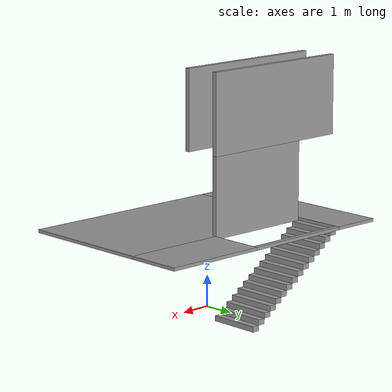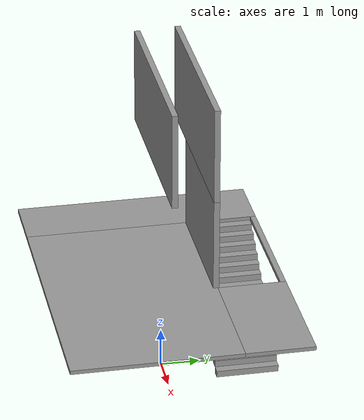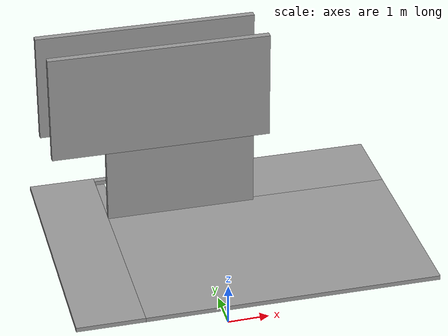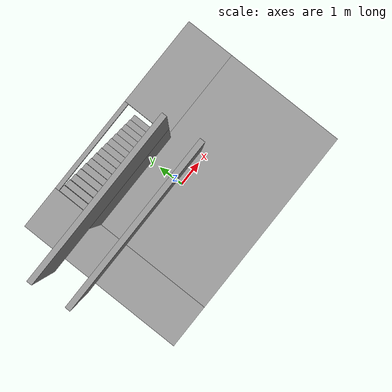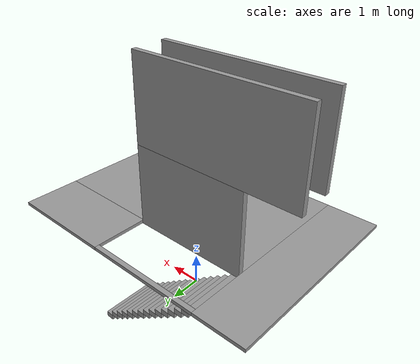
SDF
<sdf version="1.7">
 <model name="simple_building">
  <link name="Floor_1">
   <pose>0 0.011464 2.5 0 -0 0</pose>
   <visual name="Floor_1_Visual_0">
    <pose>-3.37449 0 0.05 0 -0 0</pose>
    <geometry><box><size>1.54112 6 0.1</size></box></geometry>
    <material>
     <script><uri>file://media/materials/scripts/gazebo.material</uri><name>Gazebo/Grey</name></script>
     <ambient>1 1 1 1</ambient>
     <shader type="pixel"/>
    </material>
   </visual>
   <visual name="Floor_1_Visual_1">
    <pose>0.77056 -0.869196 0.05 0 -0 0</pose>
    <geometry><box><size>6.74898 4.26161 0.1</size></box></geometry>
    <material>
     <script><uri>file://media/materials/scripts/gazebo.material</uri><name>Gazebo/Grey</name></script>
     <ambient>1 1 1 1</ambient>
     <shader type="pixel"/>
    </material>
   </visual>
   <visual name="Floor_1_Visual_2">
    <pose>2.52056 2.1308 0.05 0 -0 0</pose>
    <geometry><box><size>3.24898 1.73839 0.1</size></box></geometry>
    <material>
     <script><uri>file://media/materials/scripts/gazebo.material</uri><name>Gazebo/Grey</name></script>
     <ambient>1 1 1 1</ambient>
     <shader type="pixel"/>
    </material>
   </visual>
   <visual name="Floor_1_Visual_3">
    <pose>-0.85393 2.92738 0.05 0 -0 0</pose>
    <geometry><box><size>3.5 0.145251 0.1</size></box></geometry>
    <material>
     <script><uri>file://media/materials/scripts/gazebo.material</uri><name>Gazebo/Grey</name></script>
     <ambient>1 1 1 1</ambient>
     <shader type="pixel"/>
    </material>
   </visual>
   <collision name="Floor_1_Collision_0">
    <pose>-3.37449 0 0.05 0 -0 0</pose>
    <geometry><box><size>1.54112 6 0.1</size></box></geometry>
    <surface>
     <friction>
      <ode><mu>1</mu><mu2>1</mu2><fdir1>0 0 0</fdir1><slip1>0</slip1><slip2>0</slip2></ode>
      <torsional>
       <coefficient>1</coefficient>
       <patch_radius>0</patch_radius>
       <surface_radius>0</surface_radius>
       <use_patch_radius>1</use_patch_radius>
       <ode><slip>0</slip></ode>
      </torsional>
     </friction>
     <bounce><restitution_coefficient>0</restitution_coefficient><threshold>1e+06</threshold></bounce>
     <contact>
      <collide_without_contact>0</collide_without_contact>
      <collide_without_contact_bitmask>1</collide_without_contact_bitmask>
      <collide_bitmask>1</collide_bitmask>
      <ode>
       <soft_cfm>0</soft_cfm>
       <soft_erp>0.2</soft_erp>
       <kp>1e+13</kp>
       <kd>1</kd>
       <max_vel>0.01</max_vel>
       <min_depth>0</min_depth>
      </ode>
      <bullet>
       <split_impulse>1</split_impulse>
       <split_impulse_penetration_threshold>-0.01</split_impulse_penetration_threshold>
       <soft_cfm>0</soft_cfm>
       <soft_erp>0.2</soft_erp>
       <kp>1e+13</kp>
       <kd>1</kd>
      </bullet>
     </contact>
    </surface>
   </collision>
   <collision name="Floor_1_Collision_1">
    <pose>0.77056 -0.869196 0.05 0 -0 0</pose>
    <geometry><box><size>6.74898 4.26161 0.1</size></box></geometry>
    <surface>
     <friction>
      <ode><mu>1</mu><mu2>1</mu2><fdir1>0 0 0</fdir1><slip1>0</slip1><slip2>0</slip2></ode>
      <torsional>
       <coefficient>1</coefficient>
       <patch_radius>0</patch_radius>
       <surface_radius>0</surface_radius>
       <use_patch_radius>1</use_patch_radius>
       <ode><slip>0</slip></ode>
      </torsional>
     </friction>
     <bounce><restitution_coefficient>0</restitution_coefficient><threshold>1e+06</threshold></bounce>
     <contact>
      <collide_without_contact>0</collide_without_contact>
      <collide_without_contact_bitmask>1</collide_without_contact_bitmask>
      <collide_bitmask>1</collide_bitmask>
      <ode>
       <soft_cfm>0</soft_cfm>
       <soft_erp>0.2</soft_erp>
       <kp>1e+13</kp>
       <kd>1</kd>
       <max_vel>0.01</max_vel>
       <min_depth>0</min_depth>
      </ode>
      <bullet>
       <split_impulse>1</split_impulse>
       <split_impulse_penetration_threshold>-0.01</split_impulse_penetration_threshold>
       <soft_cfm>0</soft_cfm>
       <soft_erp>0.2</soft_erp>
       <kp>1e+13</kp>
       <kd>1</kd>
      </bullet>
     </contact>
    </surface>
   </collision>
   <collision name="Floor_1_Collision_2">
    <pose>2.52056 2.1308 0.05 0 -0 0</pose>
    <geometry><box><size>3.24898 1.73839 0.1</size></box></geometry>
    <surface>
     <friction>
      <ode><mu>1</mu><mu2>1</mu2><fdir1>0 0 0</fdir1><slip1>0</slip1><slip2>0</slip2></ode>
      <torsional>
       <coefficient>1</coefficient>
       <patch_radius>0</patch_radius>
       <surface_radius>0</surface_radius>
       <use_patch_radius>1</use_patch_radius>
       <ode><slip>0</slip></ode>
      </torsional>
     </friction>
     <bounce><restitution_coefficient>0</restitution_coefficient><threshold>1e+06</threshold></bounce>
     <contact>
      <collide_without_contact>0</collide_without_contact>
      <collide_without_contact_bitmask>1</collide_without_contact_bitmask>
      <collide_bitmask>1</collide_bitmask>
      <ode>
       <soft_cfm>0</soft_cfm>
       <soft_erp>0.2</soft_erp>
       <kp>1e+13</kp>
       <kd>1</kd>
       <max_vel>0.01</max_vel>
       <min_depth>0</min_depth>
      </ode>
      <bullet>
       <split_impulse>1</split_impulse>
       <split_impulse_penetration_threshold>-0.01</split_impulse_penetration_threshold>
       <soft_cfm>0</soft_cfm>
       <soft_erp>0.2</soft_erp>
       <kp>1e+13</kp>
       <kd>1</kd>
      </bullet>
     </contact>
    </surface>
   </collision>
   <collision name="Floor_1_Collision_3">
    <pose>-0.85393 2.92738 0.05 0 -0 0</pose>
    <geometry><box><size>3.5 0.145251 0.1</size></box></geometry>
    <surface>
     <friction>
      <ode><mu>1</mu><mu2>1</mu2><fdir1>0 0 0</fdir1><slip1>0</slip1><slip2>0</slip2></ode>
      <torsional>
       <coefficient>1</coefficient>
       <patch_radius>0</patch_radius>
       <surface_radius>0</surface_radius>
       <use_patch_radius>1</use_patch_radius>
       <ode><slip>0</slip></ode>
      </torsional>
     </friction>
     <bounce><restitution_coefficient>0</restitution_coefficient><threshold>1e+06</threshold></bounce>
     <contact>
      <collide_without_contact>0</collide_without_contact>
      <collide_without_contact_bitmask>1</collide_without_contact_bitmask>
      <collide_bitmask>1</collide_bitmask>
      <ode>
       <soft_cfm>0</soft_cfm>
       <soft_erp>0.2</soft_erp>
       <kp>1e+13</kp>
       <kd>1</kd>
       <max_vel>0.01</max_vel>
       <min_depth>0</min_depth>
      </ode>
      <bullet>
       <split_impulse>1</split_impulse>
       <split_impulse_penetration_threshold>-0.01</split_impulse_penetration_threshold>
       <soft_cfm>0</soft_cfm>
       <soft_erp>0.2</soft_erp>
       <kp>1e+13</kp>
       <kd>1</kd>
      </bullet>
     </contact>
    </surface>
   </collision>
  </link>
  <link name="Stairs_0">
   <visual name="Stairs_0_Visual_0">
    <pose>0.779404 2.06964 0.083333 0 -0 -1.5708</pose>
    <geometry><box><size>1.59314 0.233333 0.166667</size></box></geometry>
    <material>
     <script><uri>file://media/materials/scripts/gazebo.material</uri><name>Gazebo/Grey</name></script>
     <ambient>1 1 1 1</ambient>
     <shader type="pixel"/>
    </material>
   </visual>
   <visual name="Stairs_0_Visual_1">
    <pose>0.54607 2.06964 0.25 0 -0 -1.5708</pose>
    <geometry><box><size>1.59314 0.233333 0.166667</size></box></geometry>
    <material>
     <script><uri>file://media/materials/scripts/gazebo.material</uri><name>Gazebo/Grey</name></script>
     <ambient>1 1 1 1</ambient>
     <shader type="pixel"/>
    </material>
   </visual>
   <visual name="Stairs_0_Visual_2">
    <pose>0.312737 2.06964 0.416667 0 -0 -1.5708</pose>
    <geometry><box><size>1.59314 0.233333 0.166667</size></box></geometry>
    <material>
     <script><uri>file://media/materials/scripts/gazebo.material</uri><name>Gazebo/Grey</name></script>
     <ambient>1 1 1 1</ambient>
     <shader type="pixel"/>
    </material>
   </visual>
   <visual name="Stairs_0_Visual_3">
    <pose>0.079404 2.06964 0.583333 0 -0 -1.5708</pose>
    <geometry><box><size>1.59314 0.233333 0.166667</size></box></geometry>
    <material>
     <script><uri>file://media/materials/scripts/gazebo.material</uri><name>Gazebo/Grey</name></script>
     <ambient>1 1 1 1</ambient>
     <shader type="pixel"/>
    </material>
   </visual>
   <visual name="Stairs_0_Visual_4">
    <pose>-0.153929 2.06964 0.75 0 -0 -1.5708</pose>
    <geometry><box><size>1.59314 0.233333 0.166667</size></box></geometry>
    <material>
     <script><uri>file://media/materials/scripts/gazebo.material</uri><name>Gazebo/Grey</name></script>
     <ambient>1 1 1 1</ambient>
     <shader type="pixel"/>
    </material>
   </visual>
   <visual name="Stairs_0_Visual_5">
    <pose>-0.387263 2.06964 0.916667 0 -0 -1.5708</pose>
    <geometry><box><size>1.59314 0.233333 0.166667</size></box></geometry>
    <material>
     <script><uri>file://media/materials/scripts/gazebo.material</uri><name>Gazebo/Grey</name></script>
     <ambient>1 1 1 1</ambient>
     <shader type="pixel"/>
    </material>
   </visual>
   <visual name="Stairs_0_Visual_6">
    <pose>-0.620596 2.06964 1.08333 0 -0 -1.5708</pose>
    <geometry><box><size>1.59314 0.233333 0.166667</size></box></geometry>
    <material>
     <script><uri>file://media/materials/scripts/gazebo.material</uri><name>Gazebo/Grey</name></script>
     <ambient>1 1 1 1</ambient>
     <shader type="pixel"/>
    </material>
   </visual>
   <visual name="Stairs_0_Visual_7">
    <pose>-0.85393 2.06964 1.25 0 -0 -1.5708</pose>
    <geometry><box><size>1.59314 0.233333 0.166667</size></box></geometry>
    <material>
     <script><uri>file://media/materials/scripts/gazebo.material</uri><name>Gazebo/Grey</name></script>
     <ambient>1 1 1 1</ambient>
     <shader type="pixel"/>
    </material>
   </visual>
   <visual name="Stairs_0_Visual_8">
    <pose>-1.08726 2.06964 1.41667 0 -0 -1.5708</pose>
    <geometry><box><size>1.59314 0.233333 0.166667</size></box></geometry>
    <material>
     <script><uri>file://media/materials/scripts/gazebo.material</uri><name>Gazebo/Grey</name></script>
     <ambient>1 1 1 1</ambient>
     <shader type="pixel"/>
    </material>
   </visual>
   <visual name="Stairs_0_Visual_9">
    <pose>-1.3206 2.06964 1.58333 0 -0 -1.5708</pose>
    <geometry><box><size>1.59314 0.233333 0.166667</size></box></geometry>
    <material>
     <script><uri>file://media/materials/scripts/gazebo.material</uri><name>Gazebo/Grey</name></script>
     <ambient>1 1 1 1</ambient>
     <shader type="pixel"/>
    </material>
   </visual>
   <visual name="Stairs_0_Visual_10">
    <pose>-1.55393 2.06964 1.75 0 -0 -1.5708</pose>
    <geometry><box><size>1.59314 0.233333 0.166667</size></box></geometry>
    <material>
     <script><uri>file://media/materials/scripts/gazebo.material</uri><name>Gazebo/Grey</name></script>
     <ambient>1 1 1 1</ambient>
     <shader type="pixel"/>
    </material>
   </visual>
   <visual name="Stairs_0_Visual_11">
    <pose>-1.78726 2.06964 1.91667 0 -0 -1.5708</pose>
    <geometry><box><size>1.59314 0.233333 0.166667</size></box></geometry>
    <material>
     <script><uri>file://media/materials/scripts/gazebo.material</uri><name>Gazebo/Grey</name></script>
     <ambient>1 1 1 1</ambient>
     <shader type="pixel"/>
    </material>
   </visual>
   <visual name="Stairs_0_Visual_12">
    <pose>-2.0206 2.06964 2.08333 0 -0 -1.5708</pose>
    <geometry><box><size>1.59314 0.233333 0.166667</size></box></geometry>
    <material>
     <script><uri>file://media/materials/scripts/gazebo.material</uri><name>Gazebo/Grey</name></script>
     <ambient>1 1 1 1</ambient>
     <shader type="pixel"/>
    </material>
   </visual>
   <visual name="Stairs_0_Visual_13">
    <pose>-2.25393 2.06964 2.25 0 -0 -1.5708</pose>
    <geometry><box><size>1.59314 0.233333 0.166667</size></box></geometry>
    <material>
     <script><uri>file://media/materials/scripts/gazebo.material</uri><name>Gazebo/Grey</name></script>
     <ambient>1 1 1 1</ambient>
     <shader type="pixel"/>
    </material>
   </visual>
   <visual name="Stairs_0_Visual_14">
    <pose>-2.48726 2.06964 2.41667 0 -0 -1.5708</pose>
    <geometry><box><size>1.59314 0.233333 0.166667</size></box></geometry>
    <material>
     <script><uri>file://media/materials/scripts/gazebo.material</uri><name>Gazebo/Grey</name></script>
     <ambient>1 1 1 1</ambient>
     <shader type="pixel"/>
    </material>
   </visual>
   <collision name="Stairs_0_Collision_0">
    <pose>0.779404 2.06964 0.083333 0 0 -1.5708</pose>
    <geometry><box><size>1.59314 0.233333 0.166667</size></box></geometry>
    <surface>
     <friction>
      <ode><mu>1</mu><mu2>1</mu2><fdir1>0 0 0</fdir1><slip1>0</slip1><slip2>0</slip2></ode>
      <torsional>
       <coefficient>1</coefficient>
       <patch_radius>0</patch_radius>
       <surface_radius>0</surface_radius>
       <use_patch_radius>1</use_patch_radius>
       <ode><slip>0</slip></ode>
      </torsional>
     </friction>
     <bounce><restitution_coefficient>0</restitution_coefficient><threshold>1e+06</threshold></bounce>
     <contact>
      <collide_without_contact>0</collide_without_contact>
      <collide_without_contact_bitmask>1</collide_without_contact_bitmask>
      <collide_bitmask>1</collide_bitmask>
      <ode>
       <soft_cfm>0</soft_cfm>
       <soft_erp>0.2</soft_erp>
       <kp>1e+13</kp>
       <kd>1</kd>
       <max_vel>0.01</max_vel>
       <min_depth>0</min_depth>
      </ode>
      <bullet>
       <split_impulse>1</split_impulse>
       <split_impulse_penetration_threshold>-0.01</split_impulse_penetration_threshold>
       <soft_cfm>0</soft_cfm>
       <soft_erp>0.2</soft_erp>
       <kp>1e+13</kp>
       <kd>1</kd>
      </bullet>
     </contact>
    </surface>
   </collision>
   <collision name="Stairs_0_Collision_1">
    <pose>0.54607 2.06964 0.25 0 0 -1.5708</pose>
    <geometry><box><size>1.59314 0.233333 0.166667</size></box></geometry>
    <surface>
     <friction>
      <ode><mu>1</mu><mu2>1</mu2><fdir1>0 0 0</fdir1><slip1>0</slip1><slip2>0</slip2></ode>
      <torsional>
       <coefficient>1</coefficient>
       <patch_radius>0</patch_radius>
       <surface_radius>0</surface_radius>
       <use_patch_radius>1</use_patch_radius>
       <ode><slip>0</slip></ode>
      </torsional>
     </friction>
     <bounce><restitution_coefficient>0</restitution_coefficient><threshold>1e+06</threshold></bounce>
     <contact>
      <collide_without_contact>0</collide_without_contact>
      <collide_without_contact_bitmask>1</collide_without_contact_bitmask>
      <collide_bitmask>1</collide_bitmask>
      <ode>
       <soft_cfm>0</soft_cfm>
       <soft_erp>0.2</soft_erp>
       <kp>1e+13</kp>
       <kd>1</kd>
       <max_vel>0.01</max_vel>
       <min_depth>0</min_depth>
      </ode>
      <bullet>
       <split_impulse>1</split_impulse>
       <split_impulse_penetration_threshold>-0.01</split_impulse_penetration_threshold>
       <soft_cfm>0</soft_cfm>
       <soft_erp>0.2</soft_erp>
       <kp>1e+13</kp>
       <kd>1</kd>
      </bullet>
     </contact>
    </surface>
   </collision>
   <collision name="Stairs_0_Collision_2">
    <pose>0.312737 2.06964 0.416667 0 0 -1.5708</pose>
    <geometry><box><size>1.59314 0.233333 0.166667</size></box></geometry>
    <surface>
     <friction>
      <ode><mu>1</mu><mu2>1</mu2><fdir1>0 0 0</fdir1><slip1>0</slip1><slip2>0</slip2></ode>
      <torsional>
       <coefficient>1</coefficient>
       <patch_radius>0</patch_radius>
       <surface_radius>0</surface_radius>
       <use_patch_radius>1</use_patch_radius>
       <ode><slip>0</slip></ode>
      </torsional>
     </friction>
     <bounce><restitution_coefficient>0</restitution_coefficient><threshold>1e+06</threshold></bounce>
     <contact>
      <collide_without_contact>0</collide_without_contact>
      <collide_without_contact_bitmask>1</collide_without_contact_bitmask>
      <collide_bitmask>1</collide_bitmask>
      <ode>
       <soft_cfm>0</soft_cfm>
       <soft_erp>0.2</soft_erp>
       <kp>1e+13</kp>
       <kd>1</kd>
       <max_vel>0.01</max_vel>
       <min_depth>0</min_depth>
      </ode>
      <bullet>
       <split_impulse>1</split_impulse>
       <split_impulse_penetration_threshold>-0.01</split_impulse_penetration_threshold>
       <soft_cfm>0</soft_cfm>
       <soft_erp>0.2</soft_erp>
       <kp>1e+13</kp>
       <kd>1</kd>
      </bullet>
     </contact>
    </surface>
   </collision>
   <collision name="Stairs_0_Collision_3">
    <pose>0.079404 2.06964 0.583333 0 0 -1.5708</pose>
    <geometry><box><size>1.59314 0.233333 0.166667</size></box></geometry>
    <surface>
     <friction>
      <ode><mu>1</mu><mu2>1</mu2><fdir1>0 0 0</fdir1><slip1>0</slip1><slip2>0</slip2></ode>
      <torsional>
       <coefficient>1</coefficient>
       <patch_radius>0</patch_radius>
       <surface_radius>0</surface_radius>
       <use_patch_radius>1</use_patch_radius>
       <ode><slip>0</slip></ode>
      </torsional>
     </friction>
     <bounce><restitution_coefficient>0</restitution_coefficient><threshold>1e+06</threshold></bounce>
     <contact>
      <collide_without_contact>0</collide_without_contact>
      <collide_without_contact_bitmask>1</collide_without_contact_bitmask>
      <collide_bitmask>1</collide_bitmask>
      <ode>
       <soft_cfm>0</soft_cfm>
       <soft_erp>0.2</soft_erp>
       <kp>1e+13</kp>
       <kd>1</kd>
       <max_vel>0.01</max_vel>
       <min_depth>0</min_depth>
      </ode>
      <bullet>
       <split_impulse>1</split_impulse>
       <split_impulse_penetration_threshold>-0.01</split_impulse_penetration_threshold>
       <soft_cfm>0</soft_cfm>
       <soft_erp>0.2</soft_erp>
       <kp>1e+13</kp>
       <kd>1</kd>
      </bullet>
     </contact>
    </surface>
   </collision>
   <collision name="Stairs_0_Collision_4">
    <pose>-0.153929 2.06964 0.75 0 0 -1.5708</pose>
    <geometry><box><size>1.59314 0.233333 0.166667</size></box></geometry>
    <surface>
     <friction>
      <ode><mu>1</mu><mu2>1</mu2><fdir1>0 0 0</fdir1><slip1>0</slip1><slip2>0</slip2></ode>
      <torsional>
       <coefficient>1</coefficient>
       <patch_radius>0</patch_radius>
       <surface_radius>0</surface_radius>
       <use_patch_radius>1</use_patch_radius>
       <ode><slip>0</slip></ode>
      </torsional>
     </friction>
     <bounce><restitution_coefficient>0</restitution_coefficient><threshold>1e+06</threshold></bounce>
     <contact>
      <collide_without_contact>0</collide_without_contact>
      <collide_without_contact_bitmask>1</collide_without_contact_bitmask>
      <collide_bitmask>1</collide_bitmask>
      <ode>
       <soft_cfm>0</soft_cfm>
       <soft_erp>0.2</soft_erp>
       <kp>1e+13</kp>
       <kd>1</kd>
       <max_vel>0.01</max_vel>
       <min_depth>0</min_depth>
      </ode>
      <bullet>
       <split_impulse>1</split_impulse>
       <split_impulse_penetration_threshold>-0.01</split_impulse_penetration_threshold>
       <soft_cfm>0</soft_cfm>
       <soft_erp>0.2</soft_erp>
       <kp>1e+13</kp>
       <kd>1</kd>
      </bullet>
     </contact>
    </surface>
   </collision>
   <collision name="Stairs_0_Collision_5">
    <pose>-0.387263 2.06964 0.916667 0 0 -1.5708</pose>
    <geometry><box><size>1.59314 0.233333 0.166667</size></box></geometry>
    <surface>
     <friction>
      <ode><mu>1</mu><mu2>1</mu2><fdir1>0 0 0</fdir1><slip1>0</slip1><slip2>0</slip2></ode>
      <torsional>
       <coefficient>1</coefficient>
       <patch_radius>0</patch_radius>
       <surface_radius>0</surface_radius>
       <use_patch_radius>1</use_patch_radius>
       <ode><slip>0</slip></ode>
      </torsional>
     </friction>
     <bounce><restitution_coefficient>0</restitution_coefficient><threshold>1e+06</threshold></bounce>
     <contact>
      <collide_without_contact>0</collide_without_contact>
      <collide_without_contact_bitmask>1</collide_without_contact_bitmask>
      <collide_bitmask>1</collide_bitmask>
      <ode>
       <soft_cfm>0</soft_cfm>
       <soft_erp>0.2</soft_erp>
       <kp>1e+13</kp>
       <kd>1</kd>
       <max_vel>0.01</max_vel>
       <min_depth>0</min_depth>
      </ode>
      <bullet>
       <split_impulse>1</split_impulse>
       <split_impulse_penetration_threshold>-0.01</split_impulse_penetration_threshold>
       <soft_cfm>0</soft_cfm>
       <soft_erp>0.2</soft_erp>
       <kp>1e+13</kp>
       <kd>1</kd>
      </bullet>
     </contact>
    </surface>
   </collision>
   <collision name="Stairs_0_Collision_6">
    <pose>-0.620596 2.06964 1.08333 0 0 -1.5708</pose>
    <geometry><box><size>1.59314 0.233333 0.166667</size></box></geometry>
    <surface>
     <friction>
      <ode><mu>1</mu><mu2>1</mu2><fdir1>0 0 0</fdir1><slip1>0</slip1><slip2>0</slip2></ode>
      <torsional>
       <coefficient>1</coefficient>
       <patch_radius>0</patch_radius>
       <surface_radius>0</surface_radius>
       <use_patch_radius>1</use_patch_radius>
       <ode><slip>0</slip></ode>
      </torsional>
     </friction>
     <bounce><restitution_coefficient>0</restitution_coefficient><threshold>1e+06</threshold></bounce>
     <contact>
      <collide_without_contact>0</collide_without_contact>
      <collide_without_contact_bitmask>1</collide_without_contact_bitmask>
      <collide_bitmask>1</collide_bitmask>
      <ode>
       <soft_cfm>0</soft_cfm>
       <soft_erp>0.2</soft_erp>
       <kp>1e+13</kp>
       <kd>1</kd>
       <max_vel>0.01</max_vel>
       <min_depth>0</min_depth>
      </ode>
      <bullet>
       <split_impulse>1</split_impulse>
       <split_impulse_penetration_threshold>-0.01</split_impulse_penetration_threshold>
       <soft_cfm>0</soft_cfm>
       <soft_erp>0.2</soft_erp>
       <kp>1e+13</kp>
       <kd>1</kd>
      </bullet>
     </contact>
    </surface>
   </collision>
   <collision name="Stairs_0_Collision_7">
    <pose>-0.85393 2.06964 1.25 0 0 -1.5708</pose>
    <geometry><box><size>1.59314 0.233333 0.166667</size></box></geometry>
    <surface>
     <friction>
      <ode><mu>1</mu><mu2>1</mu2><fdir1>0 0 0</fdir1><slip1>0</slip1><slip2>0</slip2></ode>
      <torsional>
       <coefficient>1</coefficient>
       <patch_radius>0</patch_radius>
       <surface_radius>0</surface_radius>
       <use_patch_radius>1</use_patch_radius>
       <ode><slip>0</slip></ode>
      </torsional>
     </friction>
     <bounce><restitution_coefficient>0</restitution_coefficient><threshold>1e+06</threshold></bounce>
     <contact>
      <collide_without_contact>0</collide_without_contact>
      <collide_without_contact_bitmask>1</collide_without_contact_bitmask>
      <collide_bitmask>1</collide_bitmask>
      <ode>
       <soft_cfm>0</soft_cfm>
       <soft_erp>0.2</soft_erp>
       <kp>1e+13</kp>
       <kd>1</kd>
       <max_vel>0.01</max_vel>
       <min_depth>0</min_depth>
      </ode>
      <bullet>
       <split_impulse>1</split_impulse>
       <split_impulse_penetration_threshold>-0.01</split_impulse_penetration_threshold>
       <soft_cfm>0</soft_cfm>
       <soft_erp>0.2</soft_erp>
       <kp>1e+13</kp>
       <kd>1</kd>
      </bullet>
     </contact>
    </surface>
   </collision>
   <collision name="Stairs_0_Collision_8">
    <pose>-1.08726 2.06964 1.41667 0 0 -1.5708</pose>
    <geometry><box><size>1.59314 0.233333 0.166667</size></box></geometry>
    <surface>
     <friction>
      <ode><mu>1</mu><mu2>1</mu2><fdir1>0 0 0</fdir1><slip1>0</slip1><slip2>0</slip2></ode>
      <torsional>
       <coefficient>1</coefficient>
       <patch_radius>0</patch_radius>
       <surface_radius>0</surface_radius>
       <use_patch_radius>1</use_patch_radius>
       <ode><slip>0</slip></ode>
      </torsional>
     </friction>
     <bounce><restitution_coefficient>0</restitution_coefficient><threshold>1e+06</threshold></bounce>
     <contact>
      <collide_without_contact>0</collide_without_contact>
      <collide_without_contact_bitmask>1</collide_without_contact_bitmask>
      <collide_bitmask>1</collide_bitmask>
      <ode>
       <soft_cfm>0</soft_cfm>
       <soft_erp>0.2</soft_erp>
       <kp>1e+13</kp>
       <kd>1</kd>
       <max_vel>0.01</max_vel>
       <min_depth>0</min_depth>
      </ode>
      <bullet>
       <split_impulse>1</split_impulse>
       <split_impulse_penetration_threshold>-0.01</split_impulse_penetration_threshold>
       <soft_cfm>0</soft_cfm>
       <soft_erp>0.2</soft_erp>
       <kp>1e+13</kp>
       <kd>1</kd>
      </bullet>
     </contact>
    </surface>
   </collision>
   <collision name="Stairs_0_Collision_9">
    <pose>-1.3206 2.06964 1.58333 0 0 -1.5708</pose>
    <geometry><box><size>1.59314 0.233333 0.166667</size></box></geometry>
    <surface>
     <friction>
      <ode><mu>1</mu><mu2>1</mu2><fdir1>0 0 0</fdir1><slip1>0</slip1><slip2>0</slip2></ode>
      <torsional>
       <coefficient>1</coefficient>
       <patch_radius>0</patch_radius>
       <surface_radius>0</surface_radius>
       <use_patch_radius>1</use_patch_radius>
       <ode><slip>0</slip></ode>
      </torsional>
     </friction>
     <bounce><restitution_coefficient>0</restitution_coefficient><threshold>1e+06</threshold></bounce>
     <contact>
      <collide_without_contact>0</collide_without_contact>
      <collide_without_contact_bitmask>1</collide_without_contact_bitmask>
      <collide_bitmask>1</collide_bitmask>
      <ode>
       <soft_cfm>0</soft_cfm>
       <soft_erp>0.2</soft_erp>
       <kp>1e+13</kp>
       <kd>1</kd>
       <max_vel>0.01</max_vel>
       <min_depth>0</min_depth>
      </ode>
      <bullet>
       <split_impulse>1</split_impulse>
       <split_impulse_penetration_threshold>-0.01</split_impulse_penetration_threshold>
       <soft_cfm>0</soft_cfm>
       <soft_erp>0.2</soft_erp>
       <kp>1e+13</kp>
       <kd>1</kd>
      </bullet>
     </contact>
    </surface>
   </collision>
   <collision name="Stairs_0_Collision_10">
    <pose>-1.55393 2.06964 1.75 0 0 -1.5708</pose>
    <geometry><box><size>1.59314 0.233333 0.166667</size></box></geometry>
    <surface>
     <friction>
      <ode><mu>1</mu><mu2>1</mu2><fdir1>0 0 0</fdir1><slip1>0</slip1><slip2>0</slip2></ode>
      <torsional>
       <coefficient>1</coefficient>
       <patch_radius>0</patch_radius>
       <surface_radius>0</surface_radius>
       <use_patch_radius>1</use_patch_radius>
       <ode><slip>0</slip></ode>
      </torsional>
     </friction>
     <bounce><restitution_coefficient>0</restitution_coefficient><threshold>1e+06</threshold></bounce>
     <contact>
      <collide_without_contact>0</collide_without_contact>
      <collide_without_contact_bitmask>1</collide_without_contact_bitmask>
      <collide_bitmask>1</collide_bitmask>
      <ode>
       <soft_cfm>0</soft_cfm>
       <soft_erp>0.2</soft_erp>
       <kp>1e+13</kp>
       <kd>1</kd>
       <max_vel>0.01</max_vel>
       <min_depth>0</min_depth>
      </ode>
      <bullet>
       <split_impulse>1</split_impulse>
       <split_impulse_penetration_threshold>-0.01</split_impulse_penetration_threshold>
       <soft_cfm>0</soft_cfm>
       <soft_erp>0.2</soft_erp>
       <kp>1e+13</kp>
       <kd>1</kd>
      </bullet>
     </contact>
    </surface>
   </collision>
   <collision name="Stairs_0_Collision_11">
    <pose>-1.78726 2.06964 1.91667 0 0 -1.5708</pose>
    <geometry><box><size>1.59314 0.233333 0.166667</size></box></geometry>
    <surface>
     <friction>
      <ode><mu>1</mu><mu2>1</mu2><fdir1>0 0 0</fdir1><slip1>0</slip1><slip2>0</slip2></ode>
      <torsional>
       <coefficient>1</coefficient>
       <patch_radius>0</patch_radius>
       <surface_radius>0</surface_radius>
       <use_patch_radius>1</use_patch_radius>
       <ode><slip>0</slip></ode>
      </torsional>
     </friction>
     <bounce><restitution_coefficient>0</restitution_coefficient><threshold>1e+06</threshold></bounce>
     <contact>
      <collide_without_contact>0</collide_without_contact>
      <collide_without_contact_bitmask>1</collide_without_contact_bitmask>
      <collide_bitmask>1</collide_bitmask>
      <ode>
       <soft_cfm>0</soft_cfm>
       <soft_erp>0.2</soft_erp>
       <kp>1e+13</kp>
       <kd>1</kd>
       <max_vel>0.01</max_vel>
       <min_depth>0</min_depth>
      </ode>
      <bullet>
       <split_impulse>1</split_impulse>
       <split_impulse_penetration_threshold>-0.01</split_impulse_penetration_threshold>
       <soft_cfm>0</soft_cfm>
       <soft_erp>0.2</soft_erp>
       <kp>1e+13</kp>
       <kd>1</kd>
      </bullet>
     </contact>
    </surface>
   </collision>
   <collision name="Stairs_0_Collision_12">
    <pose>-2.0206 2.06964 2.08333 0 0 -1.5708</pose>
    <geometry><box><size>1.59314 0.233333 0.166667</size></box></geometry>
    <surface>
     <friction>
      <ode><mu>1</mu><mu2>1</mu2><fdir1>0 0 0</fdir1><slip1>0</slip1><slip2>0</slip2></ode>
      <torsional>
       <coefficient>1</coefficient>
       <patch_radius>0</patch_radius>
       <surface_radius>0</surface_radius>
       <use_patch_radius>1</use_patch_radius>
       <ode><slip>0</slip></ode>
      </torsional>
     </friction>
     <bounce><restitution_coefficient>0</restitution_coefficient><threshold>1e+06</threshold></bounce>
     <contact>
      <collide_without_contact>0</collide_without_contact>
      <collide_without_contact_bitmask>1</collide_without_contact_bitmask>
      <collide_bitmask>1</collide_bitmask>
      <ode>
       <soft_cfm>0</soft_cfm>
       <soft_erp>0.2</soft_erp>
       <kp>1e+13</kp>
       <kd>1</kd>
       <max_vel>0.01</max_vel>
       <min_depth>0</min_depth>
      </ode>
      <bullet>
       <split_impulse>1</split_impulse>
       <split_impulse_penetration_threshold>-0.01</split_impulse_penetration_threshold>
       <soft_cfm>0</soft_cfm>
       <soft_erp>0.2</soft_erp>
       <kp>1e+13</kp>
       <kd>1</kd>
      </bullet>
     </contact>
    </surface>
   </collision>
   <collision name="Stairs_0_Collision_13">
    <pose>-2.25393 2.06964 2.25 0 0 -1.5708</pose>
    <geometry><box><size>1.59314 0.233333 0.166667</size></box></geometry>
    <surface>
     <friction>
      <ode><mu>1</mu><mu2>1</mu2><fdir1>0 0 0</fdir1><slip1>0</slip1><slip2>0</slip2></ode>
      <torsional>
       <coefficient>1</coefficient>
       <patch_radius>0</patch_radius>
       <surface_radius>0</surface_radius>
       <use_patch_radius>1</use_patch_radius>
       <ode><slip>0</slip></ode>
      </torsional>
     </friction>
     <bounce><restitution_coefficient>0</restitution_coefficient><threshold>1e+06</threshold></bounce>
     <contact>
      <collide_without_contact>0</collide_without_contact>
      <collide_without_contact_bitmask>1</collide_without_contact_bitmask>
      <collide_bitmask>1</collide_bitmask>
      <ode>
       <soft_cfm>0</soft_cfm>
       <soft_erp>0.2</soft_erp>
       <kp>1e+13</kp>
       <kd>1</kd>
       <max_vel>0.01</max_vel>
       <min_depth>0</min_depth>
      </ode>
      <bullet>
       <split_impulse>1</split_impulse>
       <split_impulse_penetration_threshold>-0.01</split_impulse_penetration_threshold>
       <soft_cfm>0</soft_cfm>
       <soft_erp>0.2</soft_erp>
       <kp>1e+13</kp>
       <kd>1</kd>
      </bullet>
     </contact>
    </surface>
   </collision>
   <collision name="Stairs_0_Collision_14">
    <pose>-2.48726 2.06964 2.41667 0 0 -1.5708</pose>
    <geometry><box><size>1.59314 0.233333 0.166667</size></box></geometry>
    <surface>
     <friction>
      <ode><mu>1</mu><mu2>1</mu2><fdir1>0 0 0</fdir1><slip1>0</slip1><slip2>0</slip2></ode>
      <torsional>
       <coefficient>1</coefficient>
       <patch_radius>0</patch_radius>
       <surface_radius>0</surface_radius>
       <use_patch_radius>1</use_patch_radius>
       <ode><slip>0</slip></ode>
      </torsional>
     </friction>
     <bounce><restitution_coefficient>0</restitution_coefficient><threshold>1e+06</threshold></bounce>
     <contact>
      <collide_without_contact>0</collide_without_contact>
      <collide_without_contact_bitmask>1</collide_without_contact_bitmask>
      <collide_bitmask>1</collide_bitmask>
      <ode>
       <soft_cfm>0</soft_cfm>
       <soft_erp>0.2</soft_erp>
       <kp>1e+13</kp>
       <kd>1</kd>
       <max_vel>0.01</max_vel>
       <min_depth>0</min_depth>
      </ode>
      <bullet>
       <split_impulse>1</split_impulse>
       <split_impulse_penetration_threshold>-0.01</split_impulse_penetration_threshold>
       <soft_cfm>0</soft_cfm>
       <soft_erp>0.2</soft_erp>
       <kp>1e+13</kp>
       <kd>1</kd>
      </bullet>
     </contact>
    </surface>
   </collision>
  </link>
  <link name="Wall_21">
   <pose>-0.855716 1.23127 2.5 0 -0 3.14159</pose>
   <visual name="Wall_21_Visual">
    <pose>0 0 1.25 0 -0 0</pose>
    <geometry><box><size>3.5 0.15 2.5</size></box></geometry>
    <material>
     <script><uri>file://media/materials/scripts/gazebo.material</uri><name>Gazebo/Grey</name></script>
     <ambient>1 1 1 1</ambient>
     <shader type="pixel"/>
    </material>
   </visual>
   <collision name="Wall_21_Collision">
    <pose>0 0 1.25 0 -0 0</pose>
    <geometry><box><size>3.5 0.15 2.5</size></box></geometry>
    <surface>
     <friction>
      <ode><mu>1</mu><mu2>1</mu2><fdir1>0 0 0</fdir1><slip1>0</slip1><slip2>0</slip2></ode>
      <torsional>
       <coefficient>1</coefficient>
       <patch_radius>0</patch_radius>
       <surface_radius>0</surface_radius>
       <use_patch_radius>1</use_patch_radius>
       <ode><slip>0</slip></ode>
      </torsional>
     </friction>
     <bounce><restitution_coefficient>0</restitution_coefficient><threshold>1e+06</threshold></bounce>
     <contact>
      <collide_without_contact>0</collide_without_contact>
      <collide_without_contact_bitmask>1</collide_without_contact_bitmask>
      <collide_bitmask>1</collide_bitmask>
      <ode>
       <soft_cfm>0</soft_cfm>
       <soft_erp>0.2</soft_erp>
       <kp>1e+13</kp>
       <kd>1</kd>
       <max_vel>0.01</max_vel>
       <min_depth>0</min_depth>
      </ode>
      <bullet>
       <split_impulse>1</split_impulse>
       <split_impulse_penetration_threshold>-0.01</split_impulse_penetration_threshold>
       <soft_cfm>0</soft_cfm>
       <soft_erp>0.2</soft_erp>
       <kp>1e+13</kp>
       <kd>1</kd>
      </bullet>
     </contact>
    </surface>
   </collision>
  </link>
  <link name="Wall_26">
   <pose>-1.60572 1.23127 5 0 -0 3.14159</pose>
   <visual name="Wall_26_Visual">
    <pose>0 0 1.25 0 -0 0</pose>
    <geometry><box><size>5 0.15 2.5</size></box></geometry>
    <material>
     <script><uri>file://media/materials/scripts/gazebo.material</uri><name>Gazebo/Grey</name></script>
     <ambient>1 1 1 1</ambient>
     <shader type="pixel"/>
    </material>
   </visual>
   <collision name="Wall_26_Collision">
    <pose>0 0 1.25 0 -0 0</pose>
    <geometry><box><size>5 0.15 2.5</size></box></geometry>
    <surface>
     <friction>
      <ode><mu>1</mu><mu2>1</mu2><fdir1>0 0 0</fdir1><slip1>0</slip1><slip2>0</slip2></ode>
      <torsional>
       <coefficient>1</coefficient>
       <patch_radius>0</patch_radius>
       <surface_radius>0</surface_radius>
       <use_patch_radius>1</use_patch_radius>
       <ode><slip>0</slip></ode>
      </torsional>
     </friction>
     <bounce><restitution_coefficient>0</restitution_coefficient><threshold>1e+06</threshold></bounce>
     <contact>
      <collide_without_contact>0</collide_without_contact>
      <collide_without_contact_bitmask>1</collide_without_contact_bitmask>
      <collide_bitmask>1</collide_bitmask>
      <ode>
       <soft_cfm>0</soft_cfm>
       <soft_erp>0.2</soft_erp>
       <kp>1e+13</kp>
       <kd>1</kd>
       <max_vel>0.01</max_vel>
       <min_depth>0</min_depth>
      </ode>
      <bullet>
       <split_impulse>1</split_impulse>
       <split_impulse_penetration_threshold>-0.01</split_impulse_penetration_threshold>
       <soft_cfm>0</soft_cfm>
       <soft_erp>0.2</soft_erp>
       <kp>1e+13</kp>
       <kd>1</kd>
      </bullet>
     </contact>
    </surface>
   </collision>
  </link>
  <link name="Wall_33">
   <pose>-1.51879 0.163536 5 0 -0 3.14159</pose>
   <visual name="Wall_33_Visual">
    <pose>0 0 1.25 0 -0 0</pose>
    <geometry><box><size>5 0.15 2.5</size></box></geometry>
    <material>
     <script><uri>file://media/materials/scripts/gazebo.material</uri><name>Gazebo/Grey</name></script>
     <ambient>1 1 1 1</ambient>
     <shader type="pixel"/>
    </material>
   </visual>
   <collision name="Wall_33_Collision">
    <pose>0 0 1.25 0 -0 0</pose>
    <geometry><box><size>5 0.15 2.5</size></box></geometry>
    <surface>
     <friction>
      <ode><mu>1</mu><mu2>1</mu2><fdir1>0 0 0</fdir1><slip1>0</slip1><slip2>0</slip2></ode>
      <torsional>
       <coefficient>1</coefficient>
       <patch_radius>0</patch_radius>
       <surface_radius>0</surface_radius>
       <use_patch_radius>1</use_patch_radius>
       <ode><slip>0</slip></ode>
      </torsional>
     </friction>
     <bounce><restitution_coefficient>0</restitution_coefficient><threshold>1e+06</threshold></bounce>
     <contact>
      <collide_without_contact>0</collide_without_contact>
      <collide_without_contact_bitmask>1</collide_without_contact_bitmask>
      <collide_bitmask>1</collide_bitmask>
      <ode>
       <soft_cfm>0</soft_cfm>
       <soft_erp>0.2</soft_erp>
       <kp>1e+13</kp>
       <kd>1</kd>
       <max_vel>0.01</max_vel>
       <min_depth>0</min_depth>
      </ode>
      <bullet>
       <split_impulse>1</split_impulse>
       <split_impulse_penetration_threshold>-0.01</split_impulse_penetration_threshold>
       <soft_cfm>0</soft_cfm>
       <soft_erp>0.2</soft_erp>
       <kp>1e+13</kp>
       <kd>1</kd>
      </bullet>
     </contact>
    </surface>
   </collision>
  </link>
  <static>1</static>
 </model>
</sdf>
